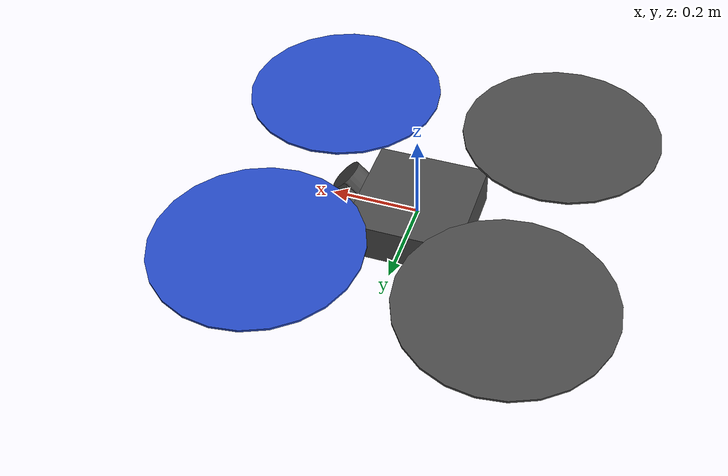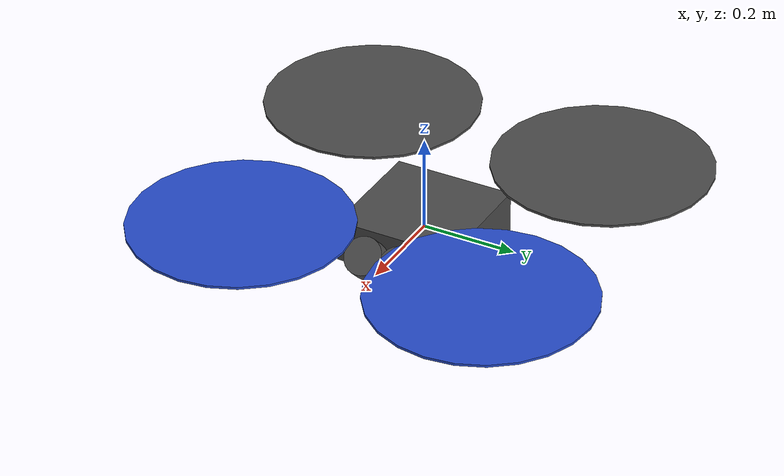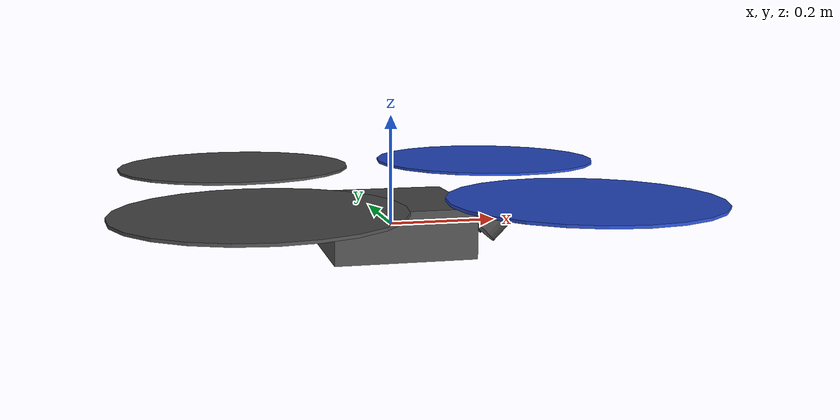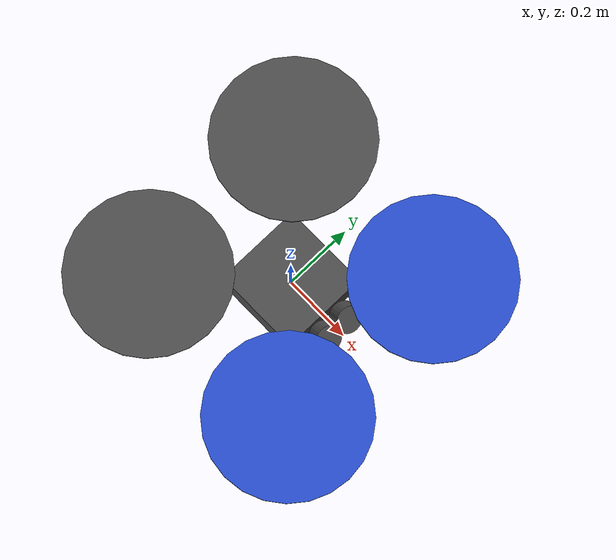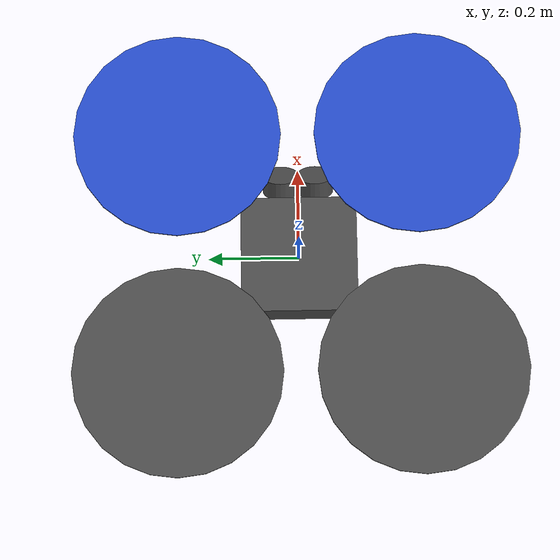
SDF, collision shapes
<sdf version='1.6'>
  <model name='noir'>
    <link name='base_link'>
      <pose frame=''>0 0 0 0 -0 0</pose>
      <inertial>
        <pose frame=''>1e-06 0 0 0 -0 0</pose>
        <mass>5.00003</mass>
        <inertia>
          <ixx>0.0347596</ixx>
          <ixy>-4.1399e-08</ixy>
          <ixz>-5.49993e-08</ixz>
          <iyy>0.0458965</iyy>
          <iyz>-9.65998e-08</iyz>
          <izz>0.0977038</izz>
        </inertia>
      </inertial>
      <collision name='base_link_fixed_joint_lump__/camera_front_left_optical_link_collision'>
        <pose frame=''>0.17 0.03805 0.01 0 0.785398 0</pose>
        <geometry>
          <cylinder>
            <length>0.04</length>
            <radius>0.04</radius>
          </cylinder>
        </geometry>
        <surface>
          <contact>
            <ode/>
          </contact>
          <friction>
            <ode/>
          </friction>
        </surface>
      </collision>
      <collision name='base_link_fixed_joint_lump__/camera_front_right_optical_link_collision_1'>
        <pose frame=''>0.17 -0.03805 0.01 0 0.785398 0</pose>
        <geometry>
          <cylinder>
            <length>0.04</length>
            <radius>0.04</radius>
          </cylinder>
        </geometry>
      </collision>
      <collision name='base_link_inertia_collision_2'>
        <pose frame=''>0 0 0 0 -0 0</pose>
        <geometry>
          <box>
            <size>0.255 0.255 0.09</size>
          </box>
        </geometry>
        <surface>
          <contact>
            <ode>
              <min_depth>0.001</min_depth>
              <max_vel>0</max_vel>
            </ode>
          </contact>
          <friction>
            <ode/>
          </friction>
        </surface>
      </collision>
      <visual name='base_link_inertia_visual'>
        <pose frame=''>0 0 0.052 0 -0 0</pose>
        <geometry>
          <mesh>
            <scale>1 1 1</scale>
            <uri>model://noir_description/meshes/CF_assembly.stl</uri>
          </mesh>
        </geometry>
        <material>
          <script>
            <name>Gazebo/DarkGrey</name>
            <uri>file://media/materials/scripts/gazebo.material</uri>
          </script>
        </material>
      </visual>
      <velocity_decay/>
      <velocity_decay/>
      <sensor name='stereo_camera' type='multicamera'>
        <update_rate>30</update_rate>
        <camera name='left'>
          <horizontal_fov>1.39626</horizontal_fov>
          <image>
            <width>752</width>
            <height>480</height>
            <format>R8G8B8</format>
          </image>
          <clip>
            <near>0.02</near>
            <far>100</far>
          </clip>
        </camera>
        <camera name='right'>
          <pose frame=''>0 -0.0761 0 0 -0 0</pose>
          <horizontal_fov>1.39626</horizontal_fov>
          <image>
            <width>752</width>
            <height>480</height>
            <format>R8G8B8</format>
          </image>
          <clip>
            <near>0.02</near>
            <far>100</far>
          </clip>
        </camera>
        <plugin name='stereo_camera_controller' filename='libgazebo_ros_multicamera.so'>
          <alwaysOn>true</alwaysOn>
          <updateRate>0.0</updateRate>
          <cameraName>camera_front</cameraName>
          <imageTopicName>image_raw</imageTopicName>
          <cameraInfoTopicName>camera_info</cameraInfoTopicName>
          <frameName>/camera_front_link</frameName>
          <hackBaseline>0.0761</hackBaseline>
          <distortionK1>0.0</distortionK1>
          <distortionK2>0.0</distortionK2>
          <distortionK3>0.0</distortionK3>
          <distortionT1>0.0</distortionT1>
          <distortionT2>0.0</distortionT2>
        </plugin>
        <pose frame=''>0.17 0.03805 0.01 0 0.785398 0</pose>
      </sensor>
      <gravity>1</gravity>
      <velocity_decay/>
      <self_collide>0</self_collide>
      <sensor name='laser' type='ray'>
        <always_on>1</always_on>
        <update_rate>20</update_rate>
        <visualize>0</visualize>
        <ray>
          <scan>
            <horizontal>
              <samples>1</samples>
              <resolution>1</resolution>
              <min_angle>-0.0005</min_angle>
              <max_angle>0.0005</max_angle>
            </horizontal>
            <vertical>
              <samples>1</samples>
              <resolution>1</resolution>
              <min_angle>-0.0005</min_angle>
              <max_angle>0.0005</max_angle>
            </vertical>
          </scan>
          <range>
            <min>0.1</min>
            <max>10</max>
            <resolution>0.01</resolution>
          </range>
        </ray>
        <plugin name='gazebo_ros_laser_controller' filename='libhector_gazebo_ros_sonar.so'>
          <gaussianNoise>0.005</gaussianNoise>
          <topicName>/mavros/distance_sensor/laser_1_sub</topicName>
          <frameId>laser_link</frameId>
        </plugin>
        <pose frame=''>0.03 0.138 0.07 3.14159 1.57079 3.14159</pose>
      </sensor>
    </link>
    <link name='/ground_truth/odometry_sensorgt_link'>
      <pose frame=''>0 0 0 0 -0 0</pose>
      <inertial>
        <pose frame=''>0 0 0 0 -0 0</pose>
        <mass>1e-05</mass>
        <inertia>
          <ixx>1e-05</ixx>
          <ixy>0</ixy>
          <ixz>0</ixz>
          <iyy>1e-05</iyy>
          <iyz>0</iyz>
          <izz>1e-05</izz>
        </inertia>
      </inertial>
    </link>
    <joint name='/ground_truth/odometry_sensorgt_joint' type='revolute'>
      <child>/ground_truth/odometry_sensorgt_link</child>
      <parent>base_link</parent>
      <axis>
        <xyz>1 0 0</xyz>
        <limit>
          <lower>0</lower>
          <upper>0</upper>
          <effort>0</effort>
          <velocity>0</velocity>
        </limit>
        <dynamics>
          <spring_reference>0</spring_reference>
          <spring_stiffness>0</spring_stiffness>
        </dynamics>
        <use_parent_model_frame>1</use_parent_model_frame>
      </axis>
    </joint>
    <link name='/imu_link'>
      <pose frame=''>0 0 0 0 -0 0</pose>
      <inertial>
        <pose frame=''>0 0 0 0 -0 0</pose>
        <mass>0.015</mass>
        <inertia>
          <ixx>1e-05</ixx>
          <ixy>0</ixy>
          <ixz>0</ixz>
          <iyy>1e-05</iyy>
          <iyz>0</iyz>
          <izz>1e-05</izz>
        </inertia>
      </inertial>
    </link>
    <joint name='/imu_joint' type='revolute'>
      <child>/imu_link</child>
      <parent>base_link</parent>
      <axis>
        <xyz>1 0 0</xyz>
        <limit>
          <lower>0</lower>
          <upper>0</upper>
          <effort>0</effort>
          <velocity>0</velocity>
        </limit>
        <dynamics>
          <spring_reference>0</spring_reference>
          <spring_stiffness>0</spring_stiffness>
        </dynamics>
        <use_parent_model_frame>1</use_parent_model_frame>
      </axis>
    </joint>
    <link name='/imugt_link'>
      <pose frame=''>0 0 0 0 -0 0</pose>
      <inertial>
        <pose frame=''>0 0 0 0 -0 0</pose>
        <mass>1e-05</mass>
        <inertia>
          <ixx>1e-05</ixx>
          <ixy>0</ixy>
          <ixz>0</ixz>
          <iyy>1e-05</iyy>
          <iyz>0</iyz>
          <izz>1e-05</izz>
        </inertia>
      </inertial>
    </link>
    <joint name='/imugt_joint' type='revolute'>
      <child>/imugt_link</child>
      <parent>base_link</parent>
      <axis>
        <xyz>1 0 0</xyz>
        <limit>
          <lower>0</lower>
          <upper>0</upper>
          <effort>0</effort>
          <velocity>0</velocity>
        </limit>
        <dynamics>
          <spring_reference>0</spring_reference>
          <spring_stiffness>0</spring_stiffness>
        </dynamics>
        <use_parent_model_frame>1</use_parent_model_frame>
      </axis>
    </joint>
    <link name='rotor_0'>
      <pose frame=''>0.265 -0.265 0.078 0 -0 0</pose>
      <inertial>
        <pose frame=''>0 0 0 0 -0 0</pose>
        <mass>0.05</mass>
        <inertia>
          <ixx>9.75e-06</ixx>
          <ixy>0</ixy>
          <ixz>0</ixz>
          <iyy>0.00871003</iyy>
          <iyz>0</iyz>
          <izz>0.00871903</izz>
        </inertia>
      </inertial>
      <collision name='rotor_0_collision'>
        <pose frame=''>0 0 0 0 -0 0</pose>
        <geometry>
          <cylinder>
            <length>0.005</length>
            <radius>0.2286</radius>
          </cylinder>
        </geometry>
        <surface>
          <contact>
            <ode/>
          </contact>
          <friction>
            <ode/>
          </friction>
        </surface>
      </collision>
      <visual name='rotor_0_visual'>
        <pose frame=''>0 0 0 0 -0 0</pose>
        <geometry>
          <mesh>
            <scale>1 1 1</scale>
            <uri>model://noir_description/meshes/prop18.stl</uri>
          </mesh>
        </geometry>
        <material>
          <script>
            <name>Gazebo/Blue</name>
            <uri>file://media/materials/scripts/gazebo.material</uri>
          </script>
        </material>
      </visual>
      <gravity>1</gravity>
      <velocity_decay/>
      <self_collide>0</self_collide>
    </link>
    <joint name='rotor_0_joint' type='revolute'>
      <child>rotor_0</child>
      <parent>base_link</parent>
      <axis>
        <xyz>0 0 1</xyz>
        <limit>
          <lower>-1e+16</lower>
          <upper>1e+16</upper>
        </limit>
        <dynamics>
          <spring_reference>0</spring_reference>
          <spring_stiffness>0</spring_stiffness>
        </dynamics>
        <use_parent_model_frame>1</use_parent_model_frame>
      </axis>
    </joint>
    <link name='rotor_1'>
      <pose frame=''>-0.265 0.265 0.078 0 -0 0</pose>
      <inertial>
        <pose frame=''>0 0 0 0 -0 0</pose>
        <mass>0.05</mass>
        <inertia>
          <ixx>9.75e-06</ixx>
          <ixy>0</ixy>
          <ixz>0</ixz>
          <iyy>0.00871003</iyy>
          <iyz>0</iyz>
          <izz>0.00871903</izz>
        </inertia>
      </inertial>
      <collision name='rotor_1_collision'>
        <pose frame=''>0 0 0 0 -0 0</pose>
        <geometry>
          <cylinder>
            <length>0.005</length>
            <radius>0.2286</radius>
          </cylinder>
        </geometry>
        <surface>
          <contact>
            <ode/>
          </contact>
          <friction>
            <ode/>
          </friction>
        </surface>
      </collision>
      <visual name='rotor_1_visual'>
        <pose frame=''>0 0 0 0 -0 0</pose>
        <geometry>
          <mesh>
            <scale>1 1 1</scale>
            <uri>model://noir_description/meshes/prop18.stl</uri>
          </mesh>
        </geometry>
        <material>
          <script>
            <name>Gazebo/DarkGrey</name>
            <uri>file://media/materials/scripts/gazebo.material</uri>
          </script>
        </material>
      </visual>
      <gravity>1</gravity>
      <velocity_decay/>
      <self_collide>0</self_collide>
    </link>
    <joint name='rotor_1_joint' type='revolute'>
      <child>rotor_1</child>
      <parent>base_link</parent>
      <axis>
        <xyz>0 0 1</xyz>
        <limit>
          <lower>-1e+16</lower>
          <upper>1e+16</upper>
        </limit>
        <dynamics>
          <spring_reference>0</spring_reference>
          <spring_stiffness>0</spring_stiffness>
        </dynamics>
        <use_parent_model_frame>1</use_parent_model_frame>
      </axis>
    </joint>
    <link name='rotor_2'>
      <pose frame=''>0.265 0.265 0.078 0 -0 0</pose>
      <inertial>
        <pose frame=''>0 0 0 0 -0 0</pose>
        <mass>0.05</mass>
        <inertia>
          <ixx>9.75e-06</ixx>
          <ixy>0</ixy>
          <ixz>0</ixz>
          <iyy>0.00871003</iyy>
          <iyz>0</iyz>
          <izz>0.00871903</izz>
        </inertia>
      </inertial>
      <collision name='rotor_2_collision'>
        <pose frame=''>0 0 0 0 -0 0</pose>
        <geometry>
          <cylinder>
            <length>0.005</length>
            <radius>0.2286</radius>
          </cylinder>
        </geometry>
        <surface>
          <contact>
            <ode/>
          </contact>
          <friction>
            <ode/>
          </friction>
        </surface>
      </collision>
      <visual name='rotor_2_visual'>
        <pose frame=''>0 0 0 0 -0 0</pose>
        <geometry>
          <mesh>
            <scale>1 1 1</scale>
            <uri>model://noir_description/meshes/prop18.stl</uri>
          </mesh>
        </geometry>
        <material>
          <script>
            <name>Gazebo/Blue</name>
            <uri>file://media/materials/scripts/gazebo.material</uri>
          </script>
        </material>
      </visual>
      <gravity>1</gravity>
      <velocity_decay/>
      <self_collide>0</self_collide>
    </link>
    <joint name='rotor_2_joint' type='revolute'>
      <child>rotor_2</child>
      <parent>base_link</parent>
      <axis>
        <xyz>0 0 1</xyz>
        <limit>
          <lower>-1e+16</lower>
          <upper>1e+16</upper>
        </limit>
        <dynamics>
          <spring_reference>0</spring_reference>
          <spring_stiffness>0</spring_stiffness>
        </dynamics>
        <use_parent_model_frame>1</use_parent_model_frame>
      </axis>
    </joint>
    <link name='rotor_3'>
      <pose frame=''>-0.265 -0.265 0.078 0 -0 0</pose>
      <inertial>
        <pose frame=''>0 0 0 0 -0 0</pose>
        <mass>0.05</mass>
        <inertia>
          <ixx>9.75e-06</ixx>
          <ixy>0</ixy>
          <ixz>0</ixz>
          <iyy>0.00871003</iyy>
          <iyz>0</iyz>
          <izz>0.00871903</izz>
        </inertia>
      </inertial>
      <collision name='rotor_3_collision'>
        <pose frame=''>0 0 0 0 -0 0</pose>
        <geometry>
          <cylinder>
            <length>0.005</length>
            <radius>0.2286</radius>
          </cylinder>
        </geometry>
        <surface>
          <contact>
            <ode/>
          </contact>
          <friction>
            <ode/>
          </friction>
        </surface>
      </collision>
      <visual name='rotor_3_visual'>
        <pose frame=''>0 0 0 0 -0 0</pose>
        <geometry>
          <mesh>
            <scale>1 1 1</scale>
            <uri>model://noir_description/meshes/prop18.stl</uri>
          </mesh>
        </geometry>
        <material>
          <script>
            <name>Gazebo/DarkGrey</name>
            <uri>file://media/materials/scripts/gazebo.material</uri>
          </script>
        </material>
      </visual>
      <gravity>1</gravity>
      <velocity_decay/>
      <self_collide>0</self_collide>
    </link>
    <joint name='rotor_3_joint' type='revolute'>
      <child>rotor_3</child>
      <parent>base_link</parent>
      <axis>
        <xyz>0 0 1</xyz>
        <limit>
          <lower>-1e+16</lower>
          <upper>1e+16</upper>
        </limit>
        <dynamics>
          <spring_reference>0</spring_reference>
          <spring_stiffness>0</spring_stiffness>
        </dynamics>
        <use_parent_model_frame>1</use_parent_model_frame>
      </axis>
    </joint>
    <plugin name='rosbag' filename='librotors_gazebo_multirotor_base_plugin.so'>
      <robotNamespace/>
      <linkName>base_link</linkName>
      <rotorVelocitySlowdownSim>10</rotorVelocitySlowdownSim>
    </plugin>
    <plugin name='front_right_motor_model' filename='librotors_gazebo_motor_model.so'>
      <robotNamespace/>
      <jointName>rotor_0_joint</jointName>
      <linkName>rotor_0</linkName>
      <turningDirection>ccw</turningDirection>
      <timeConstantUp>0.025</timeConstantUp>
      <timeConstantDown>0.05</timeConstantDown>
      <maxRotVelocity>565.486677646</maxRotVelocity>
      <motorConstant>7.974352e-05</motorConstant>
      <momentConstant>0.02893726238</momentConstant>
      <commandSubTopic>/gazebo/command/motor_speed</commandSubTopic>
      <motorNumber>0</motorNumber>
      <rotorDragCoefficient>0.000806428</rotorDragCoefficient>
      <rollingMomentCoefficient>1e-06</rollingMomentCoefficient>
      <motorSpeedPubTopic>/motor_speed/0</motorSpeedPubTopic>
      <rotorVelocitySlowdownSim>10</rotorVelocitySlowdownSim>
    </plugin>
    <plugin name='back_left_motor_model' filename='librotors_gazebo_motor_model.so'>
      <robotNamespace/>
      <jointName>rotor_1_joint</jointName>
      <linkName>rotor_1</linkName>
      <turningDirection>ccw</turningDirection>
      <timeConstantUp>0.025</timeConstantUp>
      <timeConstantDown>0.05</timeConstantDown>
      <maxRotVelocity>565.486677646</maxRotVelocity>
      <motorConstant>7.974352e-05</motorConstant>
      <momentConstant>0.02893726238</momentConstant>
      <commandSubTopic>/gazebo/command/motor_speed</commandSubTopic>
      <motorNumber>1</motorNumber>
      <rotorDragCoefficient>0.000806428</rotorDragCoefficient>
      <rollingMomentCoefficient>1e-06</rollingMomentCoefficient>
      <motorSpeedPubTopic>/motor_speed/1</motorSpeedPubTopic>
      <rotorVelocitySlowdownSim>10</rotorVelocitySlowdownSim>
    </plugin>
    <plugin name='front_left_motor_model' filename='librotors_gazebo_motor_model.so'>
      <robotNamespace/>
      <jointName>rotor_2_joint</jointName>
      <linkName>rotor_2</linkName>
      <turningDirection>cw</turningDirection>
      <timeConstantUp>0.025</timeConstantUp>
      <timeConstantDown>0.05</timeConstantDown>
      <maxRotVelocity>565.486677646</maxRotVelocity>
      <motorConstant>7.974352e-05</motorConstant>
      <momentConstant>0.02893726238</momentConstant>
      <commandSubTopic>/gazebo/command/motor_speed</commandSubTopic>
      <motorNumber>2</motorNumber>
      <rotorDragCoefficient>0.000806428</rotorDragCoefficient>
      <rollingMomentCoefficient>1e-06</rollingMomentCoefficient>
      <motorSpeedPubTopic>/motor_speed/2</motorSpeedPubTopic>
      <rotorVelocitySlowdownSim>10</rotorVelocitySlowdownSim>
    </plugin>
    <plugin name='back_right_motor_model' filename='librotors_gazebo_motor_model.so'>
      <robotNamespace/>
      <jointName>rotor_3_joint</jointName>
      <linkName>rotor_3</linkName>
      <turningDirection>cw</turningDirection>
      <timeConstantUp>0.025</timeConstantUp>
      <timeConstantDown>0.05</timeConstantDown>
      <maxRotVelocity>565.486677646</maxRotVelocity>
      <motorConstant>7.974352e-05</motorConstant>
      <momentConstant>0.02893726238</momentConstant>
      <commandSubTopic>/gazebo/command/motor_speed</commandSubTopic>
      <motorNumber>3</motorNumber>
      <rotorDragCoefficient>0.000806428</rotorDragCoefficient>
      <rollingMomentCoefficient>1e-06</rollingMomentCoefficient>
      <motorSpeedPubTopic>/motor_speed/3</motorSpeedPubTopic>
      <rotorVelocitySlowdownSim>10</rotorVelocitySlowdownSim>
    </plugin>
    <plugin name='mavlink_interface' filename='librotors_gazebo_mavlink_interface.so'>
      <robotNamespace/>
      <imuSubTopic>/imu</imuSubTopic>
      <gpsSubTopic>/gps</gpsSubTopic>
      <mavlink_addr>INADDR_ANY</mavlink_addr>
      <mavlink_udp_port>14560</mavlink_udp_port>
      <serialEnabled>false</serialEnabled>
      <serialDevice>/dev/ttyACM0</serialDevice>
      <baudRate>921600</baudRate>
      <qgc_addr>INADDR_ANY</qgc_addr>
      <qgc_udp_port>14550</qgc_udp_port>
      <hil_mode>false</hil_mode>
      <hil_state_level>false</hil_state_level>
      <vehicle_is_tailsitter>false</vehicle_is_tailsitter>
      <motorSpeedCommandPubTopic>/gazebo/command/motor_speed</motorSpeedCommandPubTopic>
      <control_channels>
        <channel name='rotor1'>
          <input_index>0</input_index>
          <input_offset>0</input_offset>
          <input_scaling>1000</input_scaling>
          <zero_position_disarmed>0</zero_position_disarmed>
          <zero_position_armed>100</zero_position_armed>
          <joint_control_type>velocity</joint_control_type>
        </channel>
        <channel name='rotor2'>
          <input_index>1</input_index>
          <input_offset>0</input_offset>
          <input_scaling>1000</input_scaling>
          <zero_position_disarmed>0</zero_position_disarmed>
          <zero_position_armed>100</zero_position_armed>
          <joint_control_type>velocity</joint_control_type>
        </channel>
        <channel name='rotor3'>
          <input_index>2</input_index>
          <input_offset>0</input_offset>
          <input_scaling>1000</input_scaling>
          <zero_position_disarmed>0</zero_position_disarmed>
          <zero_position_armed>100</zero_position_armed>
          <joint_control_type>velocity</joint_control_type>
        </channel>
        <channel name='rotor4'>
          <input_index>3</input_index>
          <input_offset>0</input_offset>
          <input_scaling>1000</input_scaling>
          <zero_position_disarmed>0</zero_position_disarmed>
          <zero_position_armed>100</zero_position_armed>
          <joint_control_type>velocity</joint_control_type>
        </channel>
        <channel name='rotor5'>
          <input_index>4</input_index>
          <input_offset>1</input_offset>
          <input_scaling>324.6</input_scaling>
          <zero_position_disarmed>0</zero_position_disarmed>
          <zero_position_armed>0</zero_position_armed>
          <joint_control_type>velocity</joint_control_type>
          <joint_control_pid>
            <p>0.1</p>
            <i>0</i>
            <d>0</d>
            <iMax>0.0</iMax>
            <iMin>0.0</iMin>
            <cmdMax>2</cmdMax>
            <cmdMin>-2</cmdMin>
          </joint_control_pid>
          <joint_name>zephyr_delta_wing::propeller_joint</joint_name>
        </channel>
        <channel name='rotor6'>
          <input_index>5</input_index>
          <input_offset>0</input_offset>
          <input_scaling>0.524</input_scaling>
          <zero_position_disarmed>0</zero_position_disarmed>
          <zero_position_armed>0</zero_position_armed>
          <joint_control_type>position</joint_control_type>
          <joint_name>zephyr_delta_wing::flap_left_joint</joint_name>
          <joint_control_pid>
            <p>10.0</p>
            <i>0</i>
            <d>0</d>
            <iMax>0</iMax>
            <iMin>0</iMin>
            <cmdMax>20</cmdMax>
            <cmdMin>-20</cmdMin>
          </joint_control_pid>
        </channel>
        <channel name='rotor7'>
          <input_index>6</input_index>
          <input_offset>0</input_offset>
          <input_scaling>0.524</input_scaling>
          <zero_position_disarmed>0</zero_position_disarmed>
          <zero_position_armed>0</zero_position_armed>
          <joint_control_type>position</joint_control_type>
          <joint_name>zephyr_delta_wing::flap_right_joint</joint_name>
          <joint_control_pid>
            <p>10.0</p>
            <i>0</i>
            <d>0</d>
            <iMax>0</iMax>
            <iMin>0</iMin>
            <cmdMax>20</cmdMax>
            <cmdMin>-20</cmdMin>
          </joint_control_pid>
        </channel>
        <channel name='rotor8'>
          <input_index>7</input_index>
          <input_offset>0</input_offset>
          <input_scaling>0.524</input_scaling>
          <zero_position_disarmed>0</zero_position_disarmed>
          <zero_position_armed>0</zero_position_armed>
          <joint_control_type>position</joint_control_type>
        </channel>
      </control_channels>
    </plugin>
    <plugin name='rotors_gazebo_imu_plugin' filename='librotors_gazebo_imu_plugin.so'>
      <robotNamespace/>
      <linkName>/imu_link</linkName>
      <imuTopic>/imu</imuTopic>
      <gyroscopeNoiseDensity>0.0003394</gyroscopeNoiseDensity>
      <gyroscopeRandomWalk>3.8785e-05</gyroscopeRandomWalk>
      <gyroscopeBiasCorrelationTime>1000.0</gyroscopeBiasCorrelationTime>
      <gyroscopeTurnOnBiasSigma>0.0087</gyroscopeTurnOnBiasSigma>
      <accelerometerNoiseDensity>0.004</accelerometerNoiseDensity>
      <accelerometerRandomWalk>0.006</accelerometerRandomWalk>
      <accelerometerBiasCorrelationTime>300.0</accelerometerBiasCorrelationTime>
      <accelerometerTurnOnBiasSigma>0.196</accelerometerTurnOnBiasSigma>
    </plugin>
    <plugin name='rotors_gazebo_imugt_plugin' filename='librotors_gazebo_imu_plugin.so'>
      <robotNamespace/>
      <linkName>/imugt_link</linkName>
      <imuTopic>ground_truth/imu</imuTopic>
      <gyroscopeNoiseDensity>0.0</gyroscopeNoiseDensity>
      <gyroscopeRandomWalk>0.0</gyroscopeRandomWalk>
      <gyroscopeBiasCorrelationTime>1000.0</gyroscopeBiasCorrelationTime>
      <gyroscopeTurnOnBiasSigma>0.0</gyroscopeTurnOnBiasSigma>
      <accelerometerNoiseDensity>0.0</accelerometerNoiseDensity>
      <accelerometerRandomWalk>0.0</accelerometerRandomWalk>
      <accelerometerBiasCorrelationTime>300.0</accelerometerBiasCorrelationTime>
      <accelerometerTurnOnBiasSigma>0.0</accelerometerTurnOnBiasSigma>
    </plugin>
    <plugin name='odometry_sensorgt' filename='librotors_gazebo_odometry_plugin.so'>
      <linkName>/ground_truth/odometry_sensorgt_link</linkName>
      <robotNamespace>/ground_truth</robotNamespace>
      <poseTopic>pose</poseTopic>
      <poseWithCovarianceTopic>pose_with_covariance</poseWithCovarianceTopic>
      <positionTopic>position</positionTopic>
      <transformTopic>transform</transformTopic>
      <odometryTopic>odometry</odometryTopic>
      <parentFrameId>world</parentFrameId>
      <measurementDivisor>1</measurementDivisor>
      <measurementDelay>0</measurementDelay>
      <unknownDelay>0.0</unknownDelay>
      <noiseNormalPosition>0 0 0</noiseNormalPosition>
      <noiseNormalQuaternion>0 0 0</noiseNormalQuaternion>
      <noiseNormalLinearVelocity>0 0 0</noiseNormalLinearVelocity>
      <noiseNormalAngularVelocity>0 0 0</noiseNormalAngularVelocity>
      <noiseUniformPosition>0 0 0</noiseUniformPosition>
      <noiseUniformQuaternion>0 0 0</noiseUniformQuaternion>
      <noiseUniformLinearVelocity>0 0 0</noiseUniformLinearVelocity>
      <noiseUniformAngularVelocity>0 0 0</noiseUniformAngularVelocity>
    </plugin>
    <static>0</static>
    <plugin name='rosbag' filename='librotors_gazebo_bag_plugin.so'>
      <robotNamespace/>
      <bagFileName>noir</bagFileName>
      <linkName>base_link</linkName>
      <frameId>base_link</frameId>
      <commandAttitudeThrustSubTopic>command/attitude</commandAttitudeThrustSubTopic>
      <commandAttitudeThrustPubTopic>command/attitude</commandAttitudeThrustPubTopic>
      <rotorVelocitySlowdownSim>10</rotorVelocitySlowdownSim>
    </plugin>
  </model>
</sdf>
